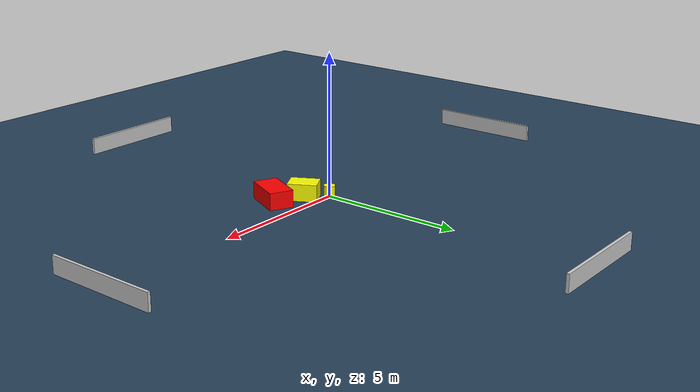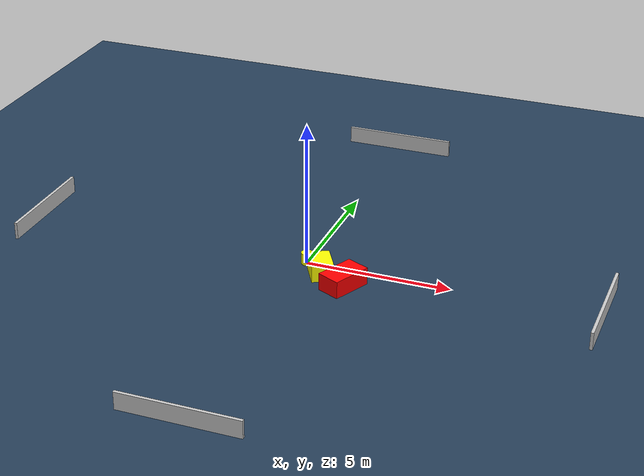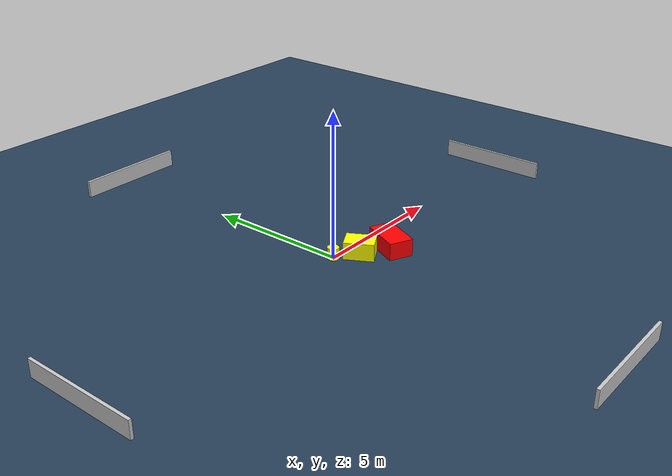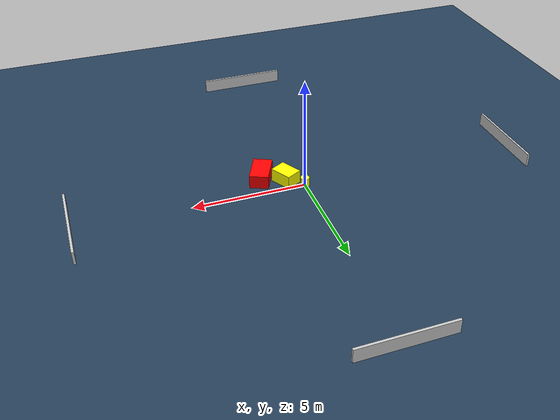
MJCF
<?xml version="1.0" ?>
<mujoco model="generated_environment">
  <option timestep="0.01" integrator="RK4" cone="elliptic"/>
  <default>
    <geom density="1"/>
  </default>
  <asset>
    <texture builtin="gradient" height="3072" name="skybox" rgb1="0.3 0.5 0.7" rgb2="0 0 0" type="skybox" width="512"/>
    <texture builtin="checker" height="300" name="groundplane" rgb1="0.2 0.3 0.4" rgb2="0.1 0.2 0.3" type="2d" width="300"/>
    <material name="groundplane" reflectance="0.2" texrepeat="5 5" texture="groundplane"/>
  </asset>
  <worldbody>
    <light dir="0 0 -1" directional="true" pos="0 0 1.5"/>
    <geom condim="3" friction="0.5 0.005 0.001" material="groundplane" name="floor" pos="0 0 0" size="0 0 0.05" type="plane"/>
    <body name="walls">
      <geom name="wall_1" condim="4" pos="-10.0 0.0 0.3" rgba="0.800000011920929 0.800000011920929 0.800000011920929 1.0" size="0.05 2.0 0.3" type="box"/>
      <geom name="wall_2" condim="4" pos="10.0 0.0 0.3" rgba="0.800000011920929 0.800000011920929 0.800000011920929 1.0" size="0.05 2.0 0.3" type="box"/>
      <geom name="wall_3" condim="4" pos="0.0 -10.0 0.3" rgba="0.800000011920929 0.800000011920929 0.800000011920929 1.0" size="2.0 0.05 0.3" type="box"/>
      <geom name="wall_4" condim="4" pos="0.0 10.0 0.3" rgba="0.800000011920929 0.800000011920929 0.800000011920929 1.0" size="2.0 0.05 0.3" type="box"/>
    </body>
    <body name="robot">
      <joint name="joint_x" type="slide" pos="0 0 0" axis="1 0 0"/>
      <joint name="joint_y" type="slide" pos="0 0 0" axis="0 1 0"/>
      <geom name="robot" type="cylinder" pos="0.0 0.0 0.2" size="0.2 0.2 0.0" mass="5.0" friction="1.0 0.005 0.0001" condim="4" rgba="1.0 1.0 0.0 1.0"/>
    </body>
    <body name="obstacle_1_movable">
      <geom name="obstacle_1_movable" condim="4" pos="0.6901844941431781 -0.5640093310775833 0.3" euler="0 0 119.07443131790825" friction="0.0 0.005 0.001" rgba="1.0 1.0 0.0 1.0" size="0.5097739142708626 0.36992115381209917 0.3" type="box" mass="0.1"/>
      <joint type="free"/>
    </body>
    <body name="obstacle_2_static">
      <geom name="obstacle_2_static" condim="4" pos="1.6721050483288245 -1.0761538161170259 0.3" euler="0 0 65.09995811336894" friction="0.0 0.005 0.001" rgba="1.0 0.0 0.0 1.0" size="0.704677294402908 0.4200739694151993 0.3" type="box"/>
    </body>
  </worldbody>
  <actuator>
    <motor name="actuator_x" joint="joint_x" gear="1" ctrlrange="-1 1"/>
    <motor name="actuator_y" joint="joint_y" gear="1" ctrlrange="-1 1"/>
  </actuator>
</mujoco>
